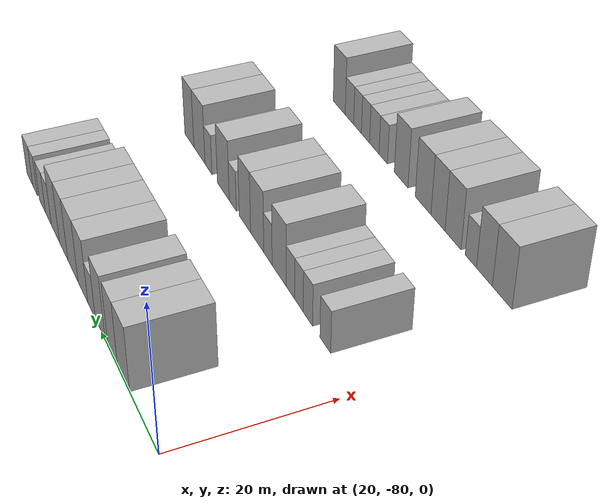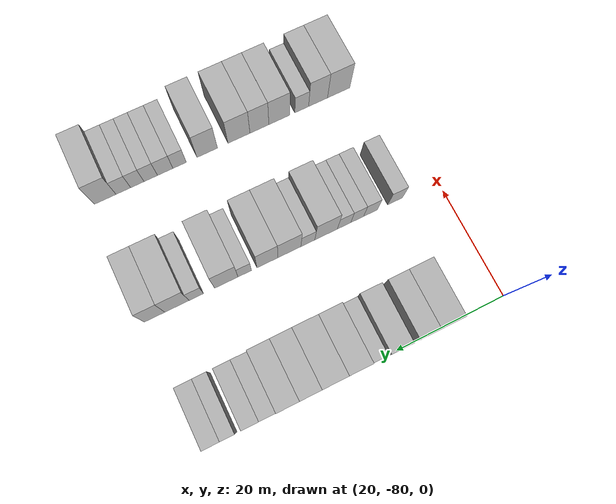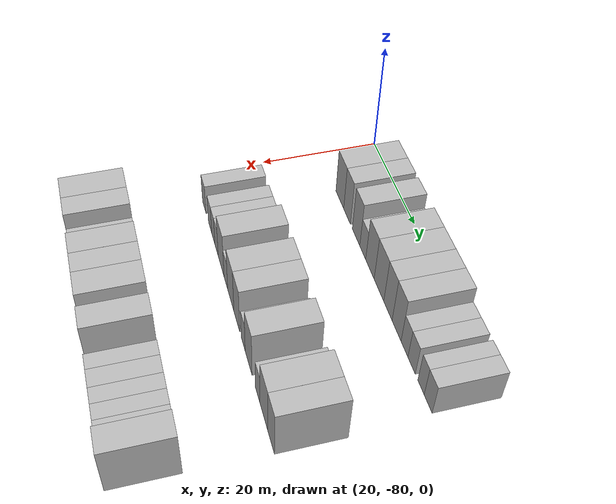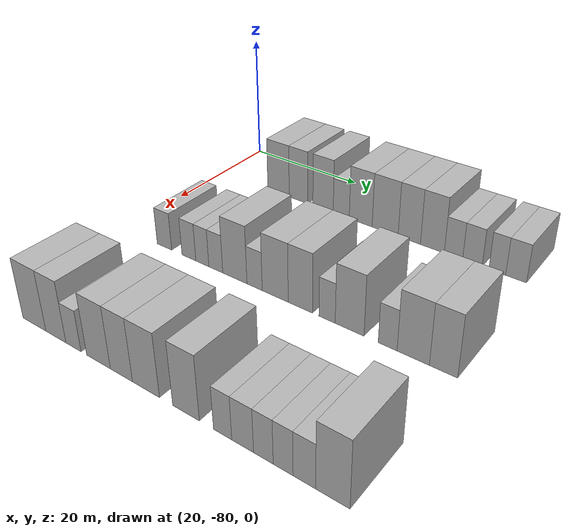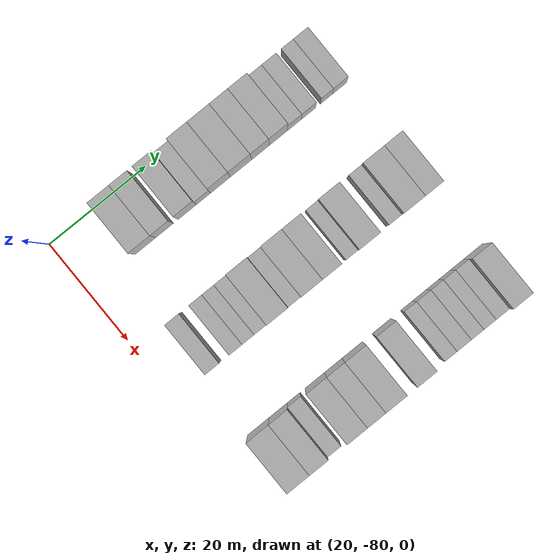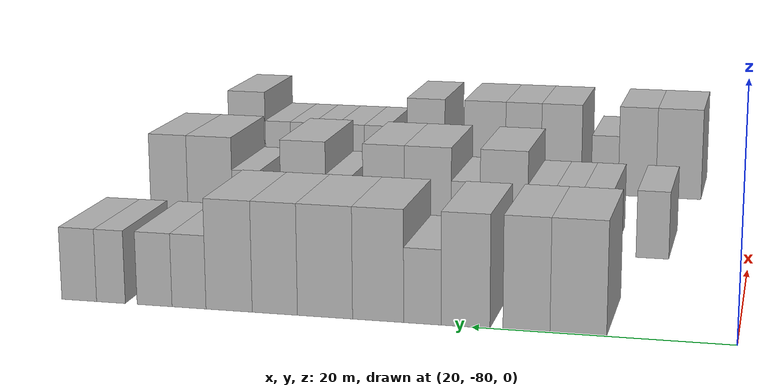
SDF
<sdf version="1.6">
 <world name="default">
  <model name="building_79">
   <static>1</static>
   <pose>25.0000 -68.1503 0 0.000000 0.000000 0.000000</pose>
   <link name="link">
    <pose>0 0 4.50 0 0 0</pose>
    <collision name="collision"><geometry><box><size>10.0000 4.3003 9.0000</size></box></geometry></collision>
    <visual name="visual">
     <cast_shadows>0</cast_shadows>
     <geometry><box><size>10.0000 4.3003 9.0000</size></box></geometry>
     <material>
      <script>
       <uri>model://HANNAS_wall/materials/scripts</uri>
       <uri>model://HANNAS_wall/materials/textures</uri>
       <name>vrc/HANNAS_wall</name>
      </script>
     </material>
    </visual>
   </link>
  </model>
  <model name="building_80">
   <static>1</static>
   <pose>25.0000 -64.1931 0 0.000000 0.000000 0.000000</pose>
   <link name="link">
    <pose>0 0 4.50 0 0 0</pose>
    <collision name="collision"><geometry><box><size>10.0000 3.6141 9.0000</size></box></geometry></collision>
    <visual name="visual">
     <cast_shadows>0</cast_shadows>
     <geometry><box><size>10.0000 3.6141 9.0000</size></box></geometry>
     <material>
      <script>
       <uri>model://HANNAS_wall/materials/scripts</uri>
       <uri>model://HANNAS_wall/materials/textures</uri>
       <name>vrc/HANNAS_wall</name>
      </script>
     </material>
    </visual>
   </link>
  </model>
  <model name="building_81">
   <static>1</static>
   <pose>25.0000 -59.4810 0 0.000000 0.000000 0.000000</pose>
   <link name="link">
    <pose>0 0 4.50 0 0 0</pose>
    <collision name="collision"><geometry><box><size>10.0000 3.8100 9.0000</size></box></geometry></collision>
    <visual name="visual">
     <cast_shadows>0</cast_shadows>
     <geometry><box><size>10.0000 3.8100 9.0000</size></box></geometry>
     <material>
      <script>
       <uri>model://HANNAS_wall/materials/scripts</uri>
       <uri>model://HANNAS_wall/materials/textures</uri>
       <name>vrc/HANNAS_wall</name>
      </script>
     </material>
    </visual>
   </link>
  </model>
  <model name="building_82">
   <static>1</static>
   <pose>25.0000 -56.1073 0 0.000000 0.000000 0.000000</pose>
   <link name="link">
    <pose>0 0 3.00 0 0 0</pose>
    <collision name="collision"><geometry><box><size>10.0000 2.9374 6.0000</size></box></geometry></collision>
    <visual name="visual">
     <cast_shadows>0</cast_shadows>
     <geometry><box><size>10.0000 2.9374 6.0000</size></box></geometry>
     <material>
      <script>
       <uri>model://HANNAS_wall/materials/scripts</uri>
       <uri>model://HANNAS_wall/materials/textures</uri>
       <name>vrc/HANNAS_wall</name>
      </script>
     </material>
    </visual>
   </link>
  </model>
  <model name="building_83">
   <static>1</static>
   <pose>25.0000 -52.6059 0 0.000000 0.000000 0.000000</pose>
   <link name="link">
    <pose>0 0 4.50 0 0 0</pose>
    <collision name="collision"><geometry><box><size>10.0000 4.0654 9.0000</size></box></geometry></collision>
    <visual name="visual">
     <cast_shadows>0</cast_shadows>
     <geometry><box><size>10.0000 4.0654 9.0000</size></box></geometry>
     <material>
      <script>
       <uri>model://HANNAS_wall/materials/scripts</uri>
       <uri>model://HANNAS_wall/materials/textures</uri>
       <name>vrc/HANNAS_wall</name>
      </script>
     </material>
    </visual>
   </link>
  </model>
  <model name="building_84">
   <static>1</static>
   <pose>25.0000 -48.3520 0 0.000000 0.000000 0.000000</pose>
   <link name="link">
    <pose>0 0 4.50 0 0 0</pose>
    <collision name="collision"><geometry><box><size>10.0000 4.4424 9.0000</size></box></geometry></collision>
    <visual name="visual">
     <cast_shadows>0</cast_shadows>
     <geometry><box><size>10.0000 4.4424 9.0000</size></box></geometry>
     <material>
      <script>
       <uri>model://HANNAS_wall/materials/scripts</uri>
       <uri>model://HANNAS_wall/materials/textures</uri>
       <name>vrc/HANNAS_wall</name>
      </script>
     </material>
    </visual>
   </link>
  </model>
  <model name="building_85">
   <static>1</static>
   <pose>25.0000 -44.2857 0 0.000000 0.000000 0.000000</pose>
   <link name="link">
    <pose>0 0 4.50 0 0 0</pose>
    <collision name="collision"><geometry><box><size>10.0000 3.6903 9.0000</size></box></geometry></collision>
    <visual name="visual">
     <cast_shadows>0</cast_shadows>
     <geometry><box><size>10.0000 3.6903 9.0000</size></box></geometry>
     <material>
      <script>
       <uri>model://HANNAS_wall/materials/scripts</uri>
       <uri>model://HANNAS_wall/materials/textures</uri>
       <name>vrc/HANNAS_wall</name>
      </script>
     </material>
    </visual>
   </link>
  </model>
  <model name="building_86">
   <static>1</static>
   <pose>25.0000 -40.5331 0 0.000000 0.000000 0.000000</pose>
   <link name="link">
    <pose>0 0 4.50 0 0 0</pose>
    <collision name="collision"><geometry><box><size>10.0000 3.8148 9.0000</size></box></geometry></collision>
    <visual name="visual">
     <cast_shadows>0</cast_shadows>
     <geometry><box><size>10.0000 3.8148 9.0000</size></box></geometry>
     <material>
      <script>
       <uri>model://HANNAS_wall/materials/scripts</uri>
       <uri>model://HANNAS_wall/materials/textures</uri>
       <name>vrc/HANNAS_wall</name>
      </script>
     </material>
    </visual>
   </link>
  </model>
  <model name="building_87">
   <static>1</static>
   <pose>25.0000 -37.2084 0 0.000000 0.000000 0.000000</pose>
   <link name="link">
    <pose>0 0 3.00 0 0 0</pose>
    <collision name="collision"><geometry><box><size>10.0000 2.8346 6.0000</size></box></geometry></collision>
    <visual name="visual">
     <cast_shadows>0</cast_shadows>
     <geometry><box><size>10.0000 2.8346 6.0000</size></box></geometry>
     <material>
      <script>
       <uri>model://HANNAS_wall/materials/scripts</uri>
       <uri>model://HANNAS_wall/materials/textures</uri>
       <name>vrc/HANNAS_wall</name>
      </script>
     </material>
    </visual>
   </link>
  </model>
  <model name="building_88">
   <static>1</static>
   <pose>25.0000 -34.3234 0 0.000000 0.000000 0.000000</pose>
   <link name="link">
    <pose>0 0 3.00 0 0 0</pose>
    <collision name="collision"><geometry><box><size>10.0000 2.9355 6.0000</size></box></geometry></collision>
    <visual name="visual">
     <cast_shadows>0</cast_shadows>
     <geometry><box><size>10.0000 2.9355 6.0000</size></box></geometry>
     <material>
      <script>
       <uri>model://HANNAS_wall/materials/scripts</uri>
       <uri>model://HANNAS_wall/materials/textures</uri>
       <name>vrc/HANNAS_wall</name>
      </script>
     </material>
    </visual>
   </link>
  </model>
  <model name="building_89">
   <static>1</static>
   <pose>25.0000 -30.6350 0 0.000000 0.000000 0.000000</pose>
   <link name="link">
    <pose>0 0 3.00 0 0 0</pose>
    <collision name="collision"><geometry><box><size>10.0000 2.4412 6.0000</size></box></geometry></collision>
    <visual name="visual">
     <cast_shadows>0</cast_shadows>
     <geometry><box><size>10.0000 2.4412 6.0000</size></box></geometry>
     <material>
      <script>
       <uri>model://HANNAS_wall/materials/scripts</uri>
       <uri>model://HANNAS_wall/materials/textures</uri>
       <name>vrc/HANNAS_wall</name>
      </script>
     </material>
    </visual>
   </link>
  </model>
  <model name="building_90">
   <static>1</static>
   <pose>25.0000 -27.9264 0 0.000000 0.000000 0.000000</pose>
   <link name="link">
    <pose>0 0 3.00 0 0 0</pose>
    <collision name="collision"><geometry><box><size>10.0000 2.9761 6.0000</size></box></geometry></collision>
    <visual name="visual">
     <cast_shadows>0</cast_shadows>
     <geometry><box><size>10.0000 2.9761 6.0000</size></box></geometry>
     <material>
      <script>
       <uri>model://HANNAS_wall/materials/scripts</uri>
       <uri>model://HANNAS_wall/materials/textures</uri>
       <name>vrc/HANNAS_wall</name>
      </script>
     </material>
    </visual>
   </link>
  </model>
  <model name="building_265">
   <static>1</static>
   <pose>47.0000 -71.7784 0 0.000000 0.000000 0.000000</pose>
   <link name="link">
    <pose>0 0 3.00 0 0 0</pose>
    <collision name="collision"><geometry><box><size>10.0000 2.8534 6.0000</size></box></geometry></collision>
    <visual name="visual">
     <cast_shadows>0</cast_shadows>
     <geometry><box><size>10.0000 2.8534 6.0000</size></box></geometry>
     <material>
      <script>
       <uri>model://HANNAS_wall/materials/scripts</uri>
       <uri>model://HANNAS_wall/materials/textures</uri>
       <name>vrc/HANNAS_wall</name>
      </script>
     </material>
    </visual>
   </link>
  </model>
  <model name="building_266">
   <static>1</static>
   <pose>47.0000 -67.0367 0 0.000000 0.000000 0.000000</pose>
   <link name="link">
    <pose>0 0 3.00 0 0 0</pose>
    <collision name="collision"><geometry><box><size>10.0000 2.6301 6.0000</size></box></geometry></collision>
    <visual name="visual">
     <cast_shadows>0</cast_shadows>
     <geometry><box><size>10.0000 2.6301 6.0000</size></box></geometry>
     <material>
      <script>
       <uri>model://HANNAS_wall/materials/scripts</uri>
       <uri>model://HANNAS_wall/materials/textures</uri>
       <name>vrc/HANNAS_wall</name>
      </script>
     </material>
    </visual>
   </link>
  </model>
  <model name="building_267">
   <static>1</static>
   <pose>47.0000 -64.5100 0 0.000000 0.000000 0.000000</pose>
   <link name="link">
    <pose>0 0 3.00 0 0 0</pose>
    <collision name="collision"><geometry><box><size>10.0000 2.4233 6.0000</size></box></geometry></collision>
    <visual name="visual">
     <cast_shadows>0</cast_shadows>
     <geometry><box><size>10.0000 2.4233 6.0000</size></box></geometry>
     <material>
      <script>
       <uri>model://HANNAS_wall/materials/scripts</uri>
       <uri>model://HANNAS_wall/materials/textures</uri>
       <name>vrc/HANNAS_wall</name>
      </script>
     </material>
    </visual>
   </link>
  </model>
  <model name="building_268">
   <static>1</static>
   <pose>47.0000 -62.0360 0 0.000000 0.000000 0.000000</pose>
   <link name="link">
    <pose>0 0 3.00 0 0 0</pose>
    <collision name="collision"><geometry><box><size>10.0000 2.5246 6.0000</size></box></geometry></collision>
    <visual name="visual">
     <cast_shadows>0</cast_shadows>
     <geometry><box><size>10.0000 2.5246 6.0000</size></box></geometry>
     <material>
      <script>
       <uri>model://HANNAS_wall/materials/scripts</uri>
       <uri>model://HANNAS_wall/materials/textures</uri>
       <name>vrc/HANNAS_wall</name>
      </script>
     </material>
    </visual>
   </link>
  </model>
  <model name="building_269">
   <static>1</static>
   <pose>47.0000 -58.6426 0 0.000000 0.000000 0.000000</pose>
   <link name="link">
    <pose>0 0 4.50 0 0 0</pose>
    <collision name="collision"><geometry><box><size>10.0000 4.2624 9.0000</size></box></geometry></collision>
    <visual name="visual">
     <cast_shadows>0</cast_shadows>
     <geometry><box><size>10.0000 4.2624 9.0000</size></box></geometry>
     <material>
      <script>
       <uri>model://HANNAS_wall/materials/scripts</uri>
       <uri>model://HANNAS_wall/materials/textures</uri>
       <name>vrc/HANNAS_wall</name>
      </script>
     </material>
    </visual>
   </link>
  </model>
  <model name="building_270">
   <static>1</static>
   <pose>47.0000 -55.2125 0 0.000000 0.000000 0.000000</pose>
   <link name="link">
    <pose>0 0 3.00 0 0 0</pose>
    <collision name="collision"><geometry><box><size>10.0000 2.5977 6.0000</size></box></geometry></collision>
    <visual name="visual">
     <cast_shadows>0</cast_shadows>
     <geometry><box><size>10.0000 2.5977 6.0000</size></box></geometry>
     <material>
      <script>
       <uri>model://HANNAS_wall/materials/scripts</uri>
       <uri>model://HANNAS_wall/materials/textures</uri>
       <name>vrc/HANNAS_wall</name>
      </script>
     </material>
    </visual>
   </link>
  </model>
  <model name="building_271">
   <static>1</static>
   <pose>47.0000 -51.7790 0 0.000000 0.000000 0.000000</pose>
   <link name="link">
    <pose>0 0 4.50 0 0 0</pose>
    <collision name="collision"><geometry><box><size>10.0000 4.2694 9.0000</size></box></geometry></collision>
    <visual name="visual">
     <cast_shadows>0</cast_shadows>
     <geometry><box><size>10.0000 4.2694 9.0000</size></box></geometry>
     <material>
      <script>
       <uri>model://HANNAS_wall/materials/scripts</uri>
       <uri>model://HANNAS_wall/materials/textures</uri>
       <name>vrc/HANNAS_wall</name>
      </script>
     </material>
    </visual>
   </link>
  </model>
  <model name="building_272">
   <static>1</static>
   <pose>47.0000 -47.7325 0 0.000000 0.000000 0.000000</pose>
   <link name="link">
    <pose>0 0 4.50 0 0 0</pose>
    <collision name="collision"><geometry><box><size>10.0000 3.8236 9.0000</size></box></geometry></collision>
    <visual name="visual">
     <cast_shadows>0</cast_shadows>
     <geometry><box><size>10.0000 3.8236 9.0000</size></box></geometry>
     <material>
      <script>
       <uri>model://HANNAS_wall/materials/scripts</uri>
       <uri>model://HANNAS_wall/materials/textures</uri>
       <name>vrc/HANNAS_wall</name>
      </script>
     </material>
    </visual>
   </link>
  </model>
  <model name="building_273">
   <static>1</static>
   <pose>47.0000 -43.5928 0 0.000000 0.000000 0.000000</pose>
   <link name="link">
    <pose>0 0 3.00 0 0 0</pose>
    <collision name="collision"><geometry><box><size>10.0000 2.4556 6.0000</size></box></geometry></collision>
    <visual name="visual">
     <cast_shadows>0</cast_shadows>
     <geometry><box><size>10.0000 2.4556 6.0000</size></box></geometry>
     <material>
      <script>
       <uri>model://HANNAS_wall/materials/scripts</uri>
       <uri>model://HANNAS_wall/materials/textures</uri>
       <name>vrc/HANNAS_wall</name>
      </script>
     </material>
    </visual>
   </link>
  </model>
  <model name="building_274">
   <static>1</static>
   <pose>47.0000 -40.2528 0 0.000000 0.000000 0.000000</pose>
   <link name="link">
    <pose>0 0 4.50 0 0 0</pose>
    <collision name="collision"><geometry><box><size>10.0000 4.2245 9.0000</size></box></geometry></collision>
    <visual name="visual">
     <cast_shadows>0</cast_shadows>
     <geometry><box><size>10.0000 4.2245 9.0000</size></box></geometry>
     <material>
      <script>
       <uri>model://HANNAS_wall/materials/scripts</uri>
       <uri>model://HANNAS_wall/materials/textures</uri>
       <name>vrc/HANNAS_wall</name>
      </script>
     </material>
    </visual>
   </link>
  </model>
  <model name="building_275">
   <static>1</static>
   <pose>47.0000 -34.8385 0 0.000000 0.000000 0.000000</pose>
   <link name="link">
    <pose>0 0 3.00 0 0 0</pose>
    <collision name="collision"><geometry><box><size>10.0000 2.6041 6.0000</size></box></geometry></collision>
    <visual name="visual">
     <cast_shadows>0</cast_shadows>
     <geometry><box><size>10.0000 2.6041 6.0000</size></box></geometry>
     <material>
      <script>
       <uri>model://HANNAS_wall/materials/scripts</uri>
       <uri>model://HANNAS_wall/materials/textures</uri>
       <name>vrc/HANNAS_wall</name>
      </script>
     </material>
    </visual>
   </link>
  </model>
  <model name="building_276">
   <static>1</static>
   <pose>47.0000 -31.3907 0 0.000000 0.000000 0.000000</pose>
   <link name="link">
    <pose>0 0 4.50 0 0 0</pose>
    <collision name="collision"><geometry><box><size>10.0000 4.2915 9.0000</size></box></geometry></collision>
    <visual name="visual">
     <cast_shadows>0</cast_shadows>
     <geometry><box><size>10.0000 4.2915 9.0000</size></box></geometry>
     <material>
      <script>
       <uri>model://HANNAS_wall/materials/scripts</uri>
       <uri>model://HANNAS_wall/materials/textures</uri>
       <name>vrc/HANNAS_wall</name>
      </script>
     </material>
    </visual>
   </link>
  </model>
  <model name="building_277">
   <static>1</static>
   <pose>47.0000 -27.4415 0 0.000000 0.000000 0.000000</pose>
   <link name="link">
    <pose>0 0 4.50 0 0 0</pose>
    <collision name="collision"><geometry><box><size>10.0000 3.6068 9.0000</size></box></geometry></collision>
    <visual name="visual">
     <cast_shadows>0</cast_shadows>
     <geometry><box><size>10.0000 3.6068 9.0000</size></box></geometry>
     <material>
      <script>
       <uri>model://HANNAS_wall/materials/scripts</uri>
       <uri>model://HANNAS_wall/materials/textures</uri>
       <name>vrc/HANNAS_wall</name>
      </script>
     </material>
    </visual>
   </link>
  </model>
  <model name="building_453">
   <static>1</static>
   <pose>69.0000 -72.4067 0 0.000000 0.000000 0.000000</pose>
   <link name="link">
    <pose>0 0 4.50 0 0 0</pose>
    <collision name="collision"><geometry><box><size>10.0000 4.4435 9.0000</size></box></geometry></collision>
    <visual name="visual">
     <cast_shadows>0</cast_shadows>
     <geometry><box><size>10.0000 4.4435 9.0000</size></box></geometry>
     <material>
      <script>
       <uri>model://HANNAS_wall/materials/scripts</uri>
       <uri>model://HANNAS_wall/materials/textures</uri>
       <name>vrc/HANNAS_wall</name>
      </script>
     </material>
    </visual>
   </link>
  </model>
  <model name="building_454">
   <static>1</static>
   <pose>69.0000 -68.3160 0 0.000000 0.000000 0.000000</pose>
   <link name="link">
    <pose>0 0 4.50 0 0 0</pose>
    <collision name="collision"><geometry><box><size>10.0000 3.7379 9.0000</size></box></geometry></collision>
    <visual name="visual">
     <cast_shadows>0</cast_shadows>
     <geometry><box><size>10.0000 3.7379 9.0000</size></box></geometry>
     <material>
      <script>
       <uri>model://HANNAS_wall/materials/scripts</uri>
       <uri>model://HANNAS_wall/materials/textures</uri>
       <name>vrc/HANNAS_wall</name>
      </script>
     </material>
    </visual>
   </link>
  </model>
  <model name="building_455">
   <static>1</static>
   <pose>69.0000 -65.0911 0 0.000000 0.000000 0.000000</pose>
   <link name="link">
    <pose>0 0 3.00 0 0 0</pose>
    <collision name="collision"><geometry><box><size>10.0000 2.7120 6.0000</size></box></geometry></collision>
    <visual name="visual">
     <cast_shadows>0</cast_shadows>
     <geometry><box><size>10.0000 2.7120 6.0000</size></box></geometry>
     <material>
      <script>
       <uri>model://HANNAS_wall/materials/scripts</uri>
       <uri>model://HANNAS_wall/materials/textures</uri>
       <name>vrc/HANNAS_wall</name>
      </script>
     </material>
    </visual>
   </link>
  </model>
  <model name="building_456">
   <static>1</static>
   <pose>69.0000 -60.7017 0 0.000000 0.000000 0.000000</pose>
   <link name="link">
    <pose>0 0 4.50 0 0 0</pose>
    <collision name="collision"><geometry><box><size>10.0000 4.0667 9.0000</size></box></geometry></collision>
    <visual name="visual">
     <cast_shadows>0</cast_shadows>
     <geometry><box><size>10.0000 4.0667 9.0000</size></box></geometry>
     <material>
      <script>
       <uri>model://HANNAS_wall/materials/scripts</uri>
       <uri>model://HANNAS_wall/materials/textures</uri>
       <name>vrc/HANNAS_wall</name>
      </script>
     </material>
    </visual>
   </link>
  </model>
  <model name="building_457">
   <static>1</static>
   <pose>69.0000 -56.8483 0 0.000000 0.000000 0.000000</pose>
   <link name="link">
    <pose>0 0 4.50 0 0 0</pose>
    <collision name="collision"><geometry><box><size>10.0000 3.6400 9.0000</size></box></geometry></collision>
    <visual name="visual">
     <cast_shadows>0</cast_shadows>
     <geometry><box><size>10.0000 3.6400 9.0000</size></box></geometry>
     <material>
      <script>
       <uri>model://HANNAS_wall/materials/scripts</uri>
       <uri>model://HANNAS_wall/materials/textures</uri>
       <name>vrc/HANNAS_wall</name>
      </script>
     </material>
    </visual>
   </link>
  </model>
  <model name="building_458">
   <static>1</static>
   <pose>69.0000 -52.9093 0 0.000000 0.000000 0.000000</pose>
   <link name="link">
    <pose>0 0 4.50 0 0 0</pose>
    <collision name="collision"><geometry><box><size>10.0000 4.2379 9.0000</size></box></geometry></collision>
    <visual name="visual">
     <cast_shadows>0</cast_shadows>
     <geometry><box><size>10.0000 4.2379 9.0000</size></box></geometry>
     <material>
      <script>
       <uri>model://HANNAS_wall/materials/scripts</uri>
       <uri>model://HANNAS_wall/materials/textures</uri>
       <name>vrc/HANNAS_wall</name>
      </script>
     </material>
    </visual>
   </link>
  </model>
  <model name="building_459">
   <static>1</static>
   <pose>69.0000 -46.8404 0 0.000000 0.000000 0.000000</pose>
   <link name="link">
    <pose>0 0 4.50 0 0 0</pose>
    <collision name="collision"><geometry><box><size>10.0000 3.8999 9.0000</size></box></geometry></collision>
    <visual name="visual">
     <cast_shadows>0</cast_shadows>
     <geometry><box><size>10.0000 3.8999 9.0000</size></box></geometry>
     <material>
      <script>
       <uri>model://HANNAS_wall/materials/scripts</uri>
       <uri>model://HANNAS_wall/materials/textures</uri>
       <name>vrc/HANNAS_wall</name>
      </script>
     </material>
    </visual>
   </link>
  </model>
  <model name="building_460">
   <static>1</static>
   <pose>69.0000 -41.6367 0 0.000000 0.000000 0.000000</pose>
   <link name="link">
    <pose>0 0 3.00 0 0 0</pose>
    <collision name="collision"><geometry><box><size>10.0000 2.5075 6.0000</size></box></geometry></collision>
    <visual name="visual">
     <cast_shadows>0</cast_shadows>
     <geometry><box><size>10.0000 2.5075 6.0000</size></box></geometry>
     <material>
      <script>
       <uri>model://HANNAS_wall/materials/scripts</uri>
       <uri>model://HANNAS_wall/materials/textures</uri>
       <name>vrc/HANNAS_wall</name>
      </script>
     </material>
    </visual>
   </link>
  </model>
  <model name="building_461">
   <static>1</static>
   <pose>69.0000 -38.9391 0 0.000000 0.000000 0.000000</pose>
   <link name="link">
    <pose>0 0 3.00 0 0 0</pose>
    <collision name="collision"><geometry><box><size>10.0000 2.8877 6.0000</size></box></geometry></collision>
    <visual name="visual">
     <cast_shadows>0</cast_shadows>
     <geometry><box><size>10.0000 2.8877 6.0000</size></box></geometry>
     <material>
      <script>
       <uri>model://HANNAS_wall/materials/scripts</uri>
       <uri>model://HANNAS_wall/materials/textures</uri>
       <name>vrc/HANNAS_wall</name>
      </script>
     </material>
    </visual>
   </link>
  </model>
  <model name="building_462">
   <static>1</static>
   <pose>69.0000 -36.2339 0 0.000000 0.000000 0.000000</pose>
   <link name="link">
    <pose>0 0 3.00 0 0 0</pose>
    <collision name="collision"><geometry><box><size>10.0000 2.5227 6.0000</size></box></geometry></collision>
    <visual name="visual">
     <cast_shadows>0</cast_shadows>
     <geometry><box><size>10.0000 2.5227 6.0000</size></box></geometry>
     <material>
      <script>
       <uri>model://HANNAS_wall/materials/scripts</uri>
       <uri>model://HANNAS_wall/materials/textures</uri>
       <name>vrc/HANNAS_wall</name>
      </script>
     </material>
    </visual>
   </link>
  </model>
  <model name="building_463">
   <static>1</static>
   <pose>69.0000 -33.7433 0 0.000000 0.000000 0.000000</pose>
   <link name="link">
    <pose>0 0 3.00 0 0 0</pose>
    <collision name="collision"><geometry><box><size>10.0000 2.4586 6.0000</size></box></geometry></collision>
    <visual name="visual">
     <cast_shadows>0</cast_shadows>
     <geometry><box><size>10.0000 2.4586 6.0000</size></box></geometry>
     <material>
      <script>
       <uri>model://HANNAS_wall/materials/scripts</uri>
       <uri>model://HANNAS_wall/materials/textures</uri>
       <name>vrc/HANNAS_wall</name>
      </script>
     </material>
    </visual>
   </link>
  </model>
  <model name="building_464">
   <static>1</static>
   <pose>69.0000 -31.1588 0 0.000000 0.000000 0.000000</pose>
   <link name="link">
    <pose>0 0 3.00 0 0 0</pose>
    <collision name="collision"><geometry><box><size>10.0000 2.7105 6.0000</size></box></geometry></collision>
    <visual name="visual">
     <cast_shadows>0</cast_shadows>
     <geometry><box><size>10.0000 2.7105 6.0000</size></box></geometry>
     <material>
      <script>
       <uri>model://HANNAS_wall/materials/scripts</uri>
       <uri>model://HANNAS_wall/materials/textures</uri>
       <name>vrc/HANNAS_wall</name>
      </script>
     </material>
    </visual>
   </link>
  </model>
  <model name="building_465">
   <static>1</static>
   <pose>69.0000 -27.8238 0 0.000000 0.000000 0.000000</pose>
   <link name="link">
    <pose>0 0 4.50 0 0 0</pose>
    <collision name="collision"><geometry><box><size>10.0000 3.9594 9.0000</size></box></geometry></collision>
    <visual name="visual">
     <cast_shadows>0</cast_shadows>
     <geometry><box><size>10.0000 3.9594 9.0000</size></box></geometry>
     <material>
      <script>
       <uri>model://HANNAS_wall/materials/scripts</uri>
       <uri>model://HANNAS_wall/materials/textures</uri>
       <name>vrc/HANNAS_wall</name>
      </script>
     </material>
    </visual>
   </link>
  </model>
 </world>
</sdf>
